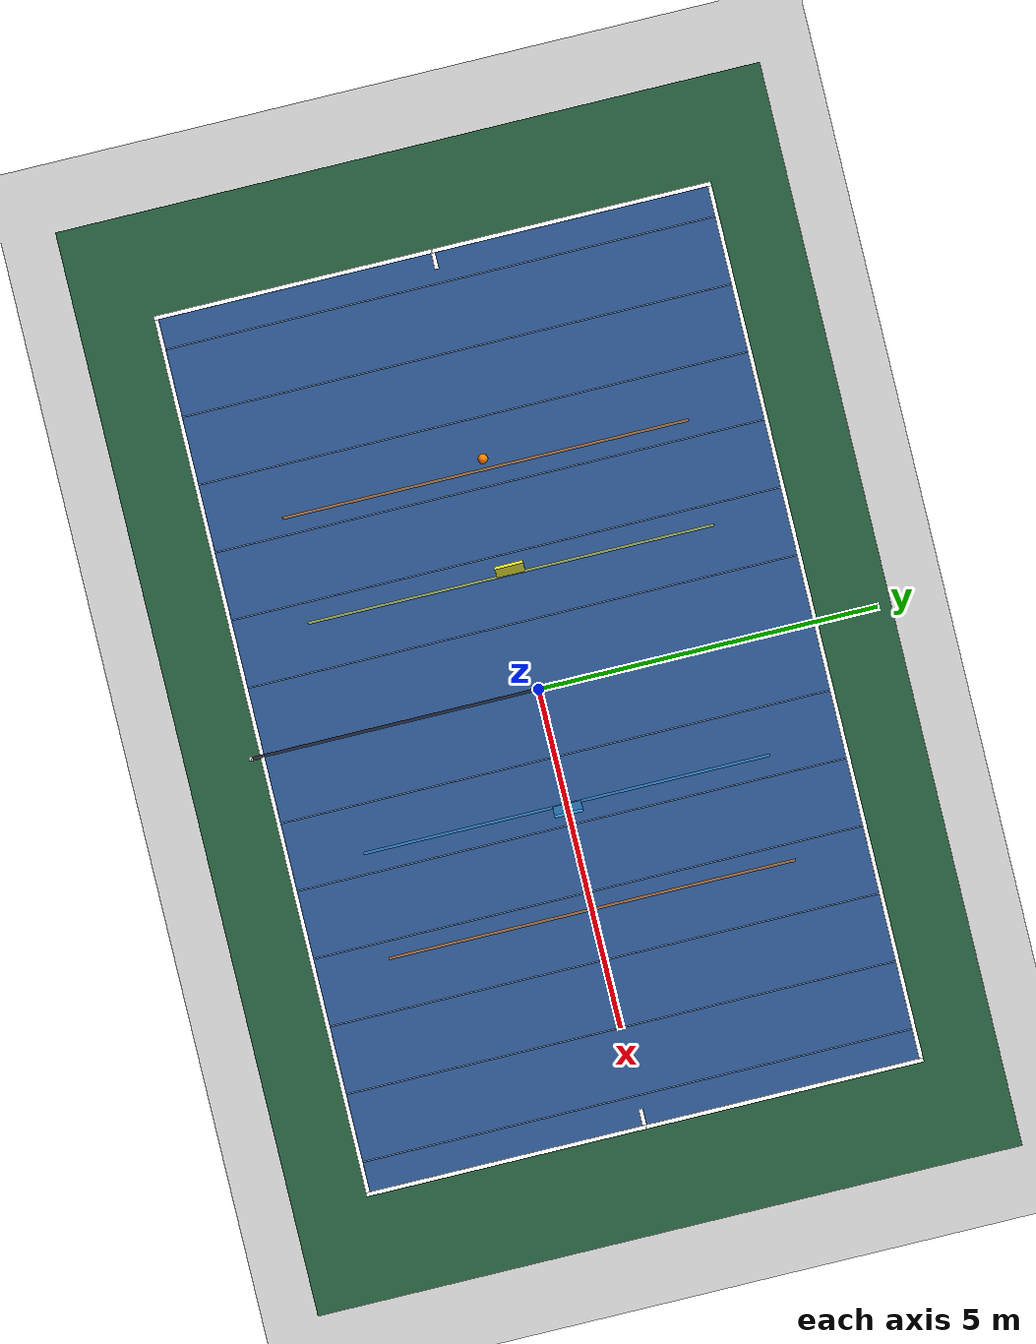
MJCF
<mujoco model="paddle_court">
    <compiler angle="degree" coordinate="local" inertiafromgeom="true" />
    <option integrator="RK4" timestep="0.002" />
    <size nconmax="500" njmax="1000" />
    <default>
        <joint armature="0.1" damping="1" limited="true" />
        <geom condim="3" density="1000" friction="1 0.5 0.5" margin="0.001" rgba="0.8 0.8 0.8 1" />
    </default>
    <asset>
        <texture name="grid" type="2d" builtin="checker" rgb1=".1 .2 .3" rgb2=".2 .3 .4" width="300" height="300" mark="none" />
        <material name="grid" texture="grid" texrepeat="3 3" texuniform="true" reflectance=".2" />
    </asset>
    <worldbody>
        <light diffuse=".8 .8 .8" pos="0 0 6" specular="0.1 0.1 0.1" />
        <camera name="side" pos="0 -11 4" xyaxes="1 0 0 0 1 2" />

        <!-- The physical surface extends past the lines (an out ball
             still bounces); legality is judged by landing position via
             CourtGeometry(6.5, 4.115), not by surface extent. -->
        <geom name="court_surface" pos="0 0 0" size="9 6 0.1" type="plane" material="grid" contype="1" conaffinity="2" />

        <!-- Diagnostic geography: boundary lines, 1 m depth ticks,
             the paddles' home columns, and the serve origins. -->
        <site name="court_line_baseline_a" type="box" pos="-6.47 0 0.006" size="0.03 4.115 0.002" rgba="1 1 1 0.8" />
        <site name="court_line_baseline_b" type="box" pos="6.47 0 0.006" size="0.03 4.115 0.002" rgba="1 1 1 0.8" />
        <site name="court_line_side_left" type="box" pos="0 -4.085 0.006" size="6.5 0.03 0.002" rgba="1 1 1 0.8" />
        <site name="court_line_side_right" type="box" pos="0 4.085 0.006" size="6.5 0.03 0.002" rgba="1 1 1 0.8" />
        <site name="court_tick_xm6" type="box" pos="-6 0 0.004" size="0.01 4.115 0.002" rgba="1 1 1 0.22" />
        <site name="court_tick_xm5" type="box" pos="-5 0 0.004" size="0.01 4.115 0.002" rgba="1 1 1 0.22" />
        <site name="court_tick_xm4" type="box" pos="-4 0 0.004" size="0.01 4.115 0.002" rgba="1 1 1 0.22" />
        <site name="court_tick_xm3" type="box" pos="-3 0 0.004" size="0.01 4.115 0.002" rgba="1 1 1 0.22" />
        <site name="court_tick_xm2" type="box" pos="-2 0 0.004" size="0.01 4.115 0.002" rgba="1 1 1 0.22" />
        <site name="court_tick_xm1" type="box" pos="-1 0 0.004" size="0.01 4.115 0.002" rgba="1 1 1 0.22" />
        <site name="court_tick_xp1" type="box" pos="1 0 0.004" size="0.01 4.115 0.002" rgba="1 1 1 0.22" />
        <site name="court_tick_xp2" type="box" pos="2 0 0.004" size="0.01 4.115 0.002" rgba="1 1 1 0.22" />
        <site name="court_tick_xp3" type="box" pos="3 0 0.004" size="0.01 4.115 0.002" rgba="1 1 1 0.22" />
        <site name="court_tick_xp4" type="box" pos="4 0 0.004" size="0.01 4.115 0.002" rgba="1 1 1 0.22" />
        <site name="court_tick_xp5" type="box" pos="5 0 0.004" size="0.01 4.115 0.002" rgba="1 1 1 0.22" />
        <site name="court_tick_xp6" type="box" pos="6 0 0.004" size="0.01 4.115 0.002" rgba="1 1 1 0.22" />
        <site name="court_line_home_a" type="box" pos="-1.7 0 0.005" size="0.02 3 0.002" rgba="0.9 0.9 0.2 0.5" />
        <site name="court_line_home_b" type="box" pos="1.7 0 0.005" size="0.02 3 0.002" rgba="0.2 0.6 0.9 0.5" />
        <site name="court_line_serve_a" type="box" pos="-3.25 0 0.005" size="0.02 3 0.002" rgba="1 0.5 0 0.5" />
        <site name="court_line_serve_b" type="box" pos="3.25 0 0.005" size="0.02 3 0.002" rgba="1 0.5 0 0.5" />

        <site name="court_tennis_apron" type="box" pos="0 0 0.002" size="8 5.2 0.001" rgba="0.13 0.35 0.22 1" />
        <site name="court_tennis_surface" type="box" pos="0 0 0.003" size="6.5 4.115 0.001" rgba="0.16 0.32 0.55 1" />
        <site name="court_tennis_baseline_a" type="box" pos="-6.47 0 0.008" size="0.03 4.115 0.001" rgba="1 1 1 1" />
        <site name="court_tennis_baseline_b" type="box" pos="6.47 0 0.008" size="0.03 4.115 0.001" rgba="1 1 1 1" />
        <site name="court_tennis_singles_left" type="box" pos="0 -4.085 0.008" size="6.5 0.03 0.001" rgba="1 1 1 1" />
        <site name="court_tennis_singles_right" type="box" pos="0 4.085 0.008" size="6.5 0.03 0.001" rgba="1 1 1 1" />
        <site name="court_tennis_center_mark_a" type="box" pos="-6.35 0 0.008" size="0.15 0.03 0.001" rgba="1 1 1 1" />
        <site name="court_tennis_center_mark_b" type="box" pos="6.35 0 0.008" size="0.15 0.03 0.001" rgba="1 1 1 1" />

        <!-- Regulation-height net. A thin box the full playable width;
             posts are cosmetic sites. The ball's priority contact
             params win against it, like every other surface. -->
        <body name="net">
            <geom name="net_panel" type="box" pos="0 0 0.457" size="0.02 4.115 0.457" rgba="0.15 0.15 0.2 0.85" contype="4" conaffinity="2" />
            <site name="net_post_left" type="cylinder" pos="0 -4.115 0.457" size="0.03 0.457" rgba="0.9 0.9 0.9 1" />
            <site name="net_post_right" type="cylinder" pos="0 4.115 0.457" size="0.03 0.457" rgba="0.9 0.9 0.9 1" />
        </body>

        <body name="player_a_paddle_base" pos="-1.7 0 1.2">
            <joint name="player_a_slide_x" type="slide" axis="1 0 0" range="-4.7 1.6" damping="8" />
            <joint name="player_a_slide_y" type="slide" axis="0 1 0" range="-3 3" damping="8" />
            <joint name="player_a_slide_z" type="slide" axis="0 0 1" range="-0.9 2" damping="8" />
            <body name="player_a_head" pos="0 0 0" euler="0 -10 0">
                <geom name="player_a_racket_face" type="box" pos="0 0 0" size="0.02 0.2 0.25" rgba="0.9 0.9 0.2 1" solref="0.01 0.5" mass="0.35" contype="8" conaffinity="2" />
            </body>
        </body>

        <!-- Side B: the exact 180-degree court rotation of side A. -->
        <body name="player_b_paddle_base" pos="1.7 0 1.2">
            <joint name="player_b_slide_x" type="slide" axis="1 0 0" range="-1.6 4.7" damping="8" />
            <joint name="player_b_slide_y" type="slide" axis="0 1 0" range="-3 3" damping="8" />
            <joint name="player_b_slide_z" type="slide" axis="0 0 1" range="-0.9 2" damping="8" />
            <body name="player_b_head" pos="0 0 0" euler="0 10 0">
                <geom name="player_b_racket_face" type="box" pos="0 0 0" size="0.02 0.2 0.25" rgba="0.2 0.6 0.9 1" solref="0.01 0.5" mass="0.35" contype="8" conaffinity="2" />
            </body>
        </body>

        <body name="ball" pos="-3.25 0 1.3">
            <joint name="ball_free" type="free" limited="false" damping="0" armature="0" />
            <geom name="ball_geom" type="sphere" size="0.07" rgba="1 0.5 0 1" mass="0.057" friction="0.3 0.1 0.1" priority="1" solref="0.01 0.15" contype="2" conaffinity="13" />
        </body>
    </worldbody>
    <actuator>
        <position name="player_a_target_x" joint="player_a_slide_x" kp="300" kv="18" ctrlrange="-4.7 1.6" ctrllimited="true" forcerange="-100 100" forcelimited="true" />
        <position name="player_a_target_y" joint="player_a_slide_y" kp="300" kv="18" ctrlrange="-3 3" ctrllimited="true" forcerange="-100 100" forcelimited="true" />
        <position name="player_a_target_z" joint="player_a_slide_z" kp="300" kv="18" ctrlrange="-0.9 2" ctrllimited="true" forcerange="-100 100" forcelimited="true" />
        <position name="player_b_target_x" joint="player_b_slide_x" kp="300" kv="18" ctrlrange="-1.6 4.7" ctrllimited="true" forcerange="-100 100" forcelimited="true" />
        <position name="player_b_target_y" joint="player_b_slide_y" kp="300" kv="18" ctrlrange="-3 3" ctrllimited="true" forcerange="-100 100" forcelimited="true" />
        <position name="player_b_target_z" joint="player_b_slide_z" kp="300" kv="18" ctrlrange="-0.9 2" ctrllimited="true" forcerange="-100 100" forcelimited="true" />
    </actuator>
</mujoco>
